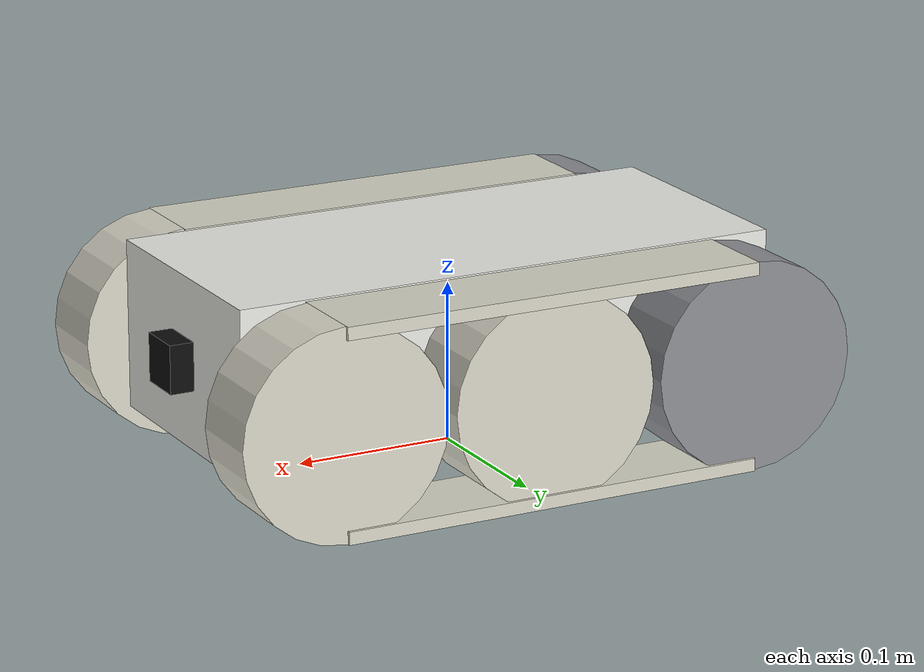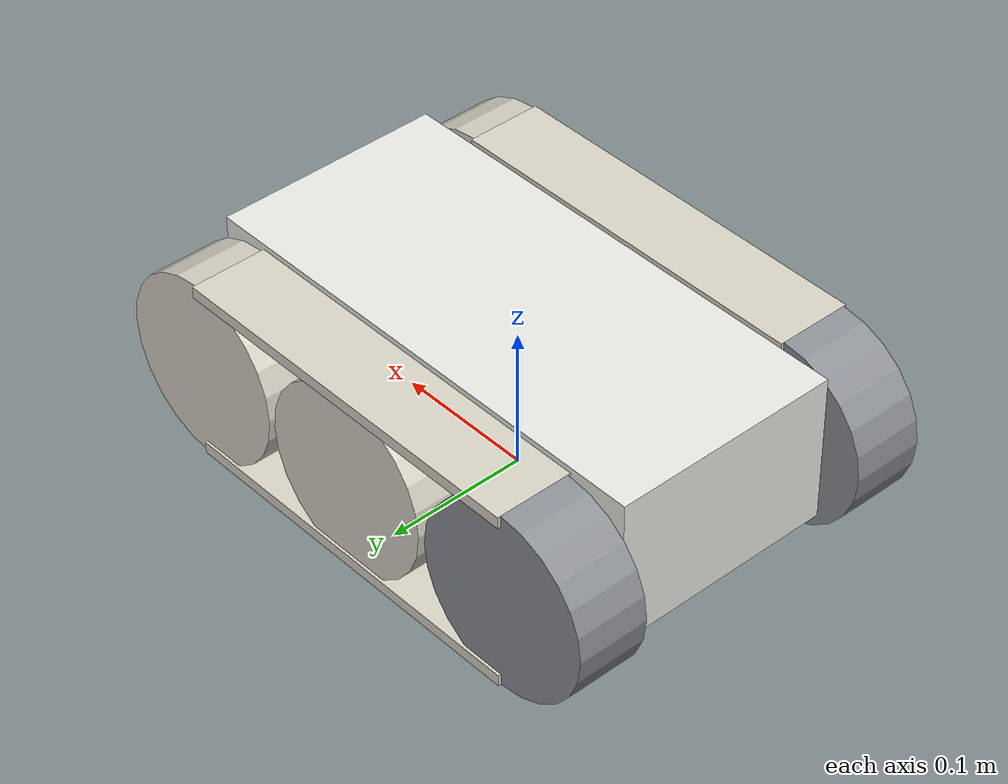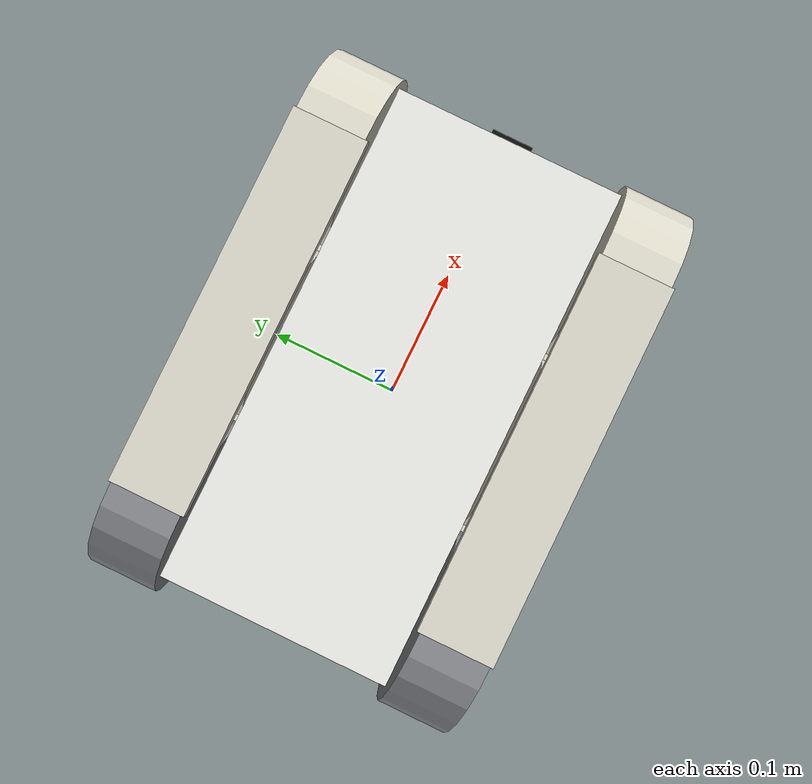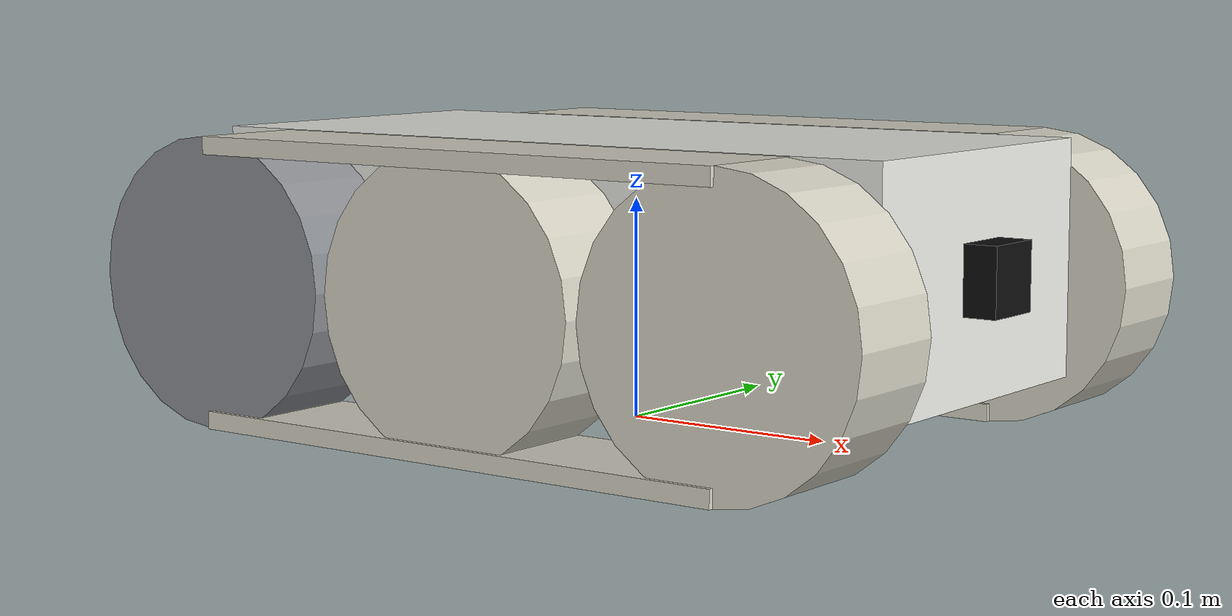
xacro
<?xml version="1.0"?>
<robot xmlns:xacro="http://www.ros.org/wiki/xacro" name="tracked_ugv">

  <!-- ==================== ARGÜMANLAR ==================== -->
  <!-- sim_mode: true  -> Gazebo (gz_ros2_control + sensör eklentileri)
                 false -> gerçek robot (ESP32) ya da use_mock_hardware ile mock -->
  <xacro:arg name="sim_mode" default="false"/>
  <xacro:arg name="use_mock_hardware" default="false"/>
  <xacro:arg name="serial_port" default="/dev/ttyAMA0"/>
  <xacro:arg name="baudrate" default="115200"/>
  <!-- Sensör sözleşmesi: kamera, IMU, GPS zorunlu; LiDAR opsiyonel -->
  <xacro:arg name="use_lidar" default="false"/>

  <!-- ==================== ÖLÇÜLER ==================== -->
  <xacro:property name="track_separation" value="0.22"/>   <!-- palet merkezleri arası -->
  <xacro:property name="track_width" value="0.05"/>        <!-- palet bandı genişliği -->
  <xacro:property name="wheel_radius" value="0.065"/>      <!-- teker + palet kalınlığı -->
  <xacro:property name="wheel_pitch" value="0.135"/>       <!-- teker eksenleri arası -->
  <xacro:property name="belt_thickness" value="0.008"/>

  <xacro:property name="hull_length" value="${2 * wheel_pitch + 0.08}"/>
  <xacro:property name="hull_width" value="${track_separation - track_width - 0.01}"/>
  <xacro:property name="hull_bottom" value="0.025"/>        <!-- yerden yükseklik -->
  <xacro:property name="hull_top" value="${2 * wheel_radius}"/>
  <xacro:property name="hull_height" value="${hull_top - hull_bottom}"/>
  <!-- base_link teker ekseni yüksekliğinde; gövde merkezi buna göre -->
  <xacro:property name="hull_z" value="${(hull_top + hull_bottom) / 2 - wheel_radius}"/>

  <!-- Materyaller (fotoğraftaki beyaz gövde / palet, gri dişli) -->
  <material name="white"><color rgba="0.92 0.92 0.90 1.0"/></material>
  <material name="ivory"><color rgba="0.85 0.84 0.78 1.0"/></material>
  <material name="grey"><color rgba="0.55 0.56 0.58 1.0"/></material>
  <material name="blue"><color rgba="0.1 0.3 0.8 1.0"/></material>
  <material name="black"><color rgba="0.05 0.05 0.05 1.0"/></material>

  <!-- base_footprint (Zemine temas referansı, REP-105) -->
  <link name="base_footprint"/>

  <joint name="base_footprint_joint" type="fixed">
    <parent link="base_footprint"/>
    <child link="base_link"/>
    <origin xyz="0 0 ${wheel_radius}" rpy="0 0 0"/>
  </joint>

  <!-- base_link: paletler arasındaki gövde -->
  <link name="base_link">
    <visual>
      <origin xyz="0 0 ${hull_z}" rpy="0 0 0"/>
      <geometry><box size="${hull_length} ${hull_width} ${hull_height}"/></geometry>
      <material name="white"/>
    </visual>
    <collision>
      <origin xyz="0 0 ${hull_z}" rpy="0 0 0"/>
      <geometry><box size="${hull_length} ${hull_width} ${hull_height}"/></geometry>
    </collision>
    <inertial>
      <mass value="6.0"/>
      <origin xyz="0 0 ${hull_z}" rpy="0 0 0"/>
      <!-- Kutu: m/12 * (b² + c²) -->
      <inertia ixx="${6.0 / 12 * (hull_width**2 + hull_height**2)}" ixy="0" ixz="0"
               iyy="${6.0 / 12 * (hull_length**2 + hull_height**2)}" iyz="0"
               izz="${6.0 / 12 * (hull_length**2 + hull_width**2)}"/>
    </inertial>
  </link>

  <!-- ==================== PALETLER ==================== -->
  <!-- Teker: name, x konumu, renk. mimic="" ise tahrikli (arka dişli), değilse
       palet üzerinden dişliyi takip eder. -->
  <xacro:macro name="track_wheel" params="side y name x material mimic">
    <link name="${side}_${name}">
      <visual>
        <geometry><cylinder radius="${wheel_radius}" length="${track_width}"/></geometry>
        <material name="${material}"/>
      </visual>
      <collision>
        <geometry><cylinder radius="${wheel_radius}" length="${track_width}"/></geometry>
      </collision>
      <inertial>
        <mass value="0.4"/>
        <!-- Silindir: eksen (z) 1/2 m r², diğerleri 1/12 m (3r² + h²) -->
        <inertia ixx="${0.4 / 12 * (3 * wheel_radius**2 + track_width**2)}" ixy="0" ixz="0"
                 iyy="${0.4 / 12 * (3 * wheel_radius**2 + track_width**2)}" iyz="0"
                 izz="${0.4 / 2 * wheel_radius**2}"/>
      </inertial>
    </link>

    <joint name="${side}_${name}_joint" type="continuous">
      <parent link="base_link"/>
      <child link="${side}_${name}"/>
      <origin xyz="${x} ${y} 0" rpy="-1.5708 0 0"/>
      <axis xyz="0 0 1"/>
      <xacro:unless value="${mimic == ''}">
        <mimic joint="${side}_${mimic}_joint" multiplier="1.0" offset="0.0"/>
      </xacro:unless>
    </joint>
  </xacro:macro>

  <!-- Palet bandı görseli: tekerlerin üstünden ve altından geçen düz bölümler -->
  <xacro:macro name="track" params="side y">
    <link name="${side}_track">
      <visual>
        <origin xyz="0 0 ${wheel_radius - belt_thickness / 2}" rpy="0 0 0"/>
        <geometry><box size="${2 * wheel_pitch} ${track_width + 0.004} ${belt_thickness}"/></geometry>
        <material name="ivory"/>
      </visual>
      <visual>
        <origin xyz="0 0 ${-wheel_radius + belt_thickness / 2}" rpy="0 0 0"/>
        <geometry><box size="${2 * wheel_pitch} ${track_width + 0.004} ${belt_thickness}"/></geometry>
        <material name="ivory"/>
      </visual>
    </link>
    <joint name="${side}_track_joint" type="fixed">
      <parent link="base_link"/>
      <child link="${side}_track"/>
      <origin xyz="0 ${y} 0" rpy="0 0 0"/>
    </joint>

    <!-- Arka dişli: tahrikli (ESP32 motoru) -->
    <xacro:track_wheel side="${side}" y="${y}" name="sprocket" x="${-wheel_pitch}" material="grey" mimic=""/>
    <!-- Orta ve ön teker: tahriksiz, palet üzerinden dişliyle aynı hızda döner -->
    <xacro:track_wheel side="${side}" y="${y}" name="wheel_mid" x="0" material="ivory" mimic="sprocket"/>
    <xacro:track_wheel side="${side}" y="${y}" name="wheel_front" x="${wheel_pitch}" material="ivory" mimic="sprocket"/>
  </xacro:macro>

  <xacro:track side="left" y="${track_separation / 2}"/>
  <xacro:track side="right" y="${-track_separation / 2}"/>

  <!-- ==================== SENSÖRLER ==================== -->
  <!-- IMU Link (gövde içinde) -->
  <link name="imu_link"/>
  <joint name="imu_joint" type="fixed">
    <parent link="base_link"/>
    <child link="imu_link"/>
    <origin xyz="0 0 ${hull_z}" rpy="0 0 0"/>
  </joint>

  <!-- GPS Link (üst kapakta, arkada) -->
  <link name="gps_link"/>
  <joint name="gps_joint" type="fixed">
    <parent link="base_link"/>
    <child link="gps_link"/>
    <origin xyz="-0.10 0 ${hull_top - wheel_radius + 0.01}" rpy="0 0 0"/>
  </joint>

  <!-- LiDAR Link (opsiyonel, üst kapakta) -->
  <xacro:if value="$(arg use_lidar)">
    <link name="lidar_link">
      <visual>
        <geometry><cylinder radius="0.04" length="0.04"/></geometry>
        <material name="blue"/>
      </visual>
      <collision>
        <geometry><cylinder radius="0.04" length="0.04"/></geometry>
      </collision>
    </link>
    <joint name="lidar_joint" type="fixed">
      <parent link="base_link"/>
      <child link="lidar_link"/>
      <origin xyz="0.10 0 ${hull_top - wheel_radius + 0.02}" rpy="0 0 0"/>
    </joint>
  </xacro:if>

  <!-- Kamera Link (gövdenin ön yüzünde) -->
  <link name="camera_link">
    <visual>
      <origin xyz="0 0 0" rpy="0 0 0"/>
      <geometry>
        <box size="0.02 0.03 0.03"/>
      </geometry>
      <material name="black"/>
    </visual>
    <collision>
      <geometry>
        <box size="0.02 0.03 0.03"/>
      </geometry>
    </collision>
  </link>

  <joint name="camera_joint" type="fixed">
    <parent link="base_link"/>
    <child link="camera_link"/>
    <origin xyz="${hull_length / 2 + 0.005} 0 ${hull_z}" rpy="0 0 0"/>
  </joint>

  <!-- Optik Eksen Linki (ROS kamera standartı: Z ileri, X sağ, Y aşağı) -->
  <link name="camera_link_optical"/>
  <joint name="camera_optical_joint" type="fixed">
    <parent link="camera_link"/>
    <child link="camera_link_optical"/>
    <origin xyz="0 0 0" rpy="-1.5708 0 -1.5708"/>
  </joint>

  <!-- ==================== ROS2_CONTROL & SİMÜLASYON ==================== -->
  <xacro:include filename="$(find tracked_description)/urdf/ros2_control.xacro"/>
  <xacro:tracked_ros2_control sim_mode="$(arg sim_mode)"
                              use_mock_hardware="$(arg use_mock_hardware)"
                              serial_port="$(arg serial_port)"
                              baudrate="$(arg baudrate)"/>

  <xacro:if value="$(arg sim_mode)">
    <xacro:include filename="$(find tracked_description)/urdf/gazebo.xacro"/>
    <xacro:tracked_gazebo use_lidar="$(arg use_lidar)"/>
  </xacro:if>

</robot>
